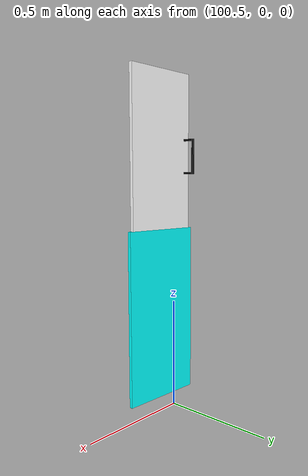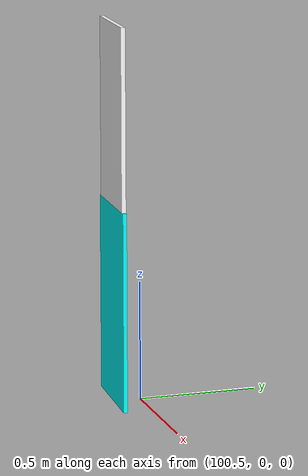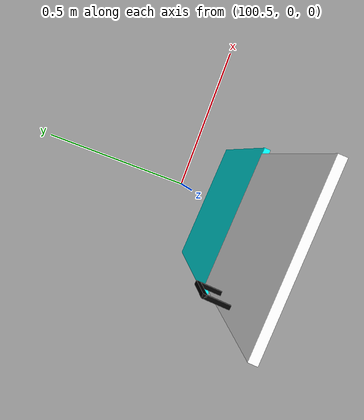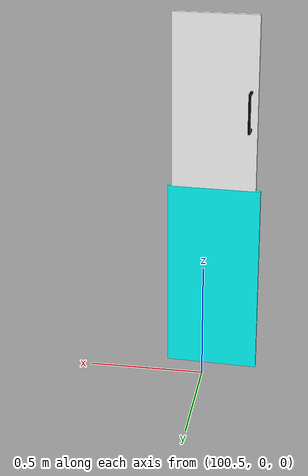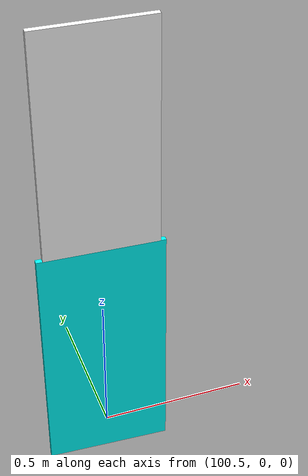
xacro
<?xml version="1.0" ?>
<robot name="shelf" xmlns:xacro="http://www.ros.org/wiki/xacro">
    <xacro:arg name="fixed" default="true"/>
    <xacro:arg name="prefix" default=""/>

    <xacro:property name="prefix" default="$(arg prefix)"/>
    <xacro:property name="door_length" default="0.363"/>
    <xacro:property name="door_height" default="0.748"/>
    <xacro:property name="door_width" default="0.018"/>
    <xacro:property name="corpus_door_gap" default="0.004"/>
    <xacro:property name="corpus_length" default="0.4"/>
    <xacro:property name="corpus_height" default="0.827"/>
    <xacro:property name="corpus_width" default="0.016"/>
    <xacro:property name="handle_height" default="0.056"/>
    <xacro:property name="handle_length" default="0.16"/>
    <xacro:property name="handle_offset_y" default="0.335"/>
    <xacro:property name="handle_offset_z" default="-0.024"/>

    <xacro:property name="shelf_x" default="0.268466"/>
    <xacro:property name="shelf_y" default="-0.407"/>
    <xacro:property name="shelf_z" default="0.8299"/>

    <xacro:macro name="box_inertia" params="m x y z">
        <inertial>
            <origin rpy="0 0 0" xyz="0 ${-y/2} 0"/>
            <mass value="${m}"/>
            <inertia ixx="${0.0833 * m * (y**2 + z**2)}"
                     ixy="0"
                     ixz="0"
                     iyy="${0.0833 * m * (x**2 + z**2)}"
                     iyz="0"
                     izz="${0.0833 * m * (x**2 + y**2)}"/>
        </inertial>
    </xacro:macro>

    <xacro:if value="$(arg fixed)">
        <link name="world"/>
        <joint name="fixed" type="fixed">
            <parent link="world"/>
            <child link="${prefix}shelf"/>
            <origin xyz="100.272902 -0.0944762   0.830376" rpy="0.000710616 0.000859919  1.51977"/>
        </joint>
    </xacro:if>

    <link name="${prefix}shelf">
        <xacro:box_inertia m="5" x="${corpus_width}" y="${corpus_length}" z="${shelf_z}"/>
        <visual>
            <origin rpy="0 0 0" xyz="0 -${corpus_length/2} ${-shelf_z/2}"/>
            <geometry>
                <box size="${corpus_width} ${corpus_length} ${shelf_z}"/>
            </geometry>
            <material name="shelf_material">
                <color rgba="0.0 1.0 1.0 1"/>
            </material>
        </visual>
    </link>

    <link name="${prefix}door">
        <xacro:box_inertia m="3.0" x="${door_width}" y="${door_length}" z="${door_height}"/>
        <visual>
            <origin rpy="0 0 0" xyz="${-door_width/2} ${door_length/2} 0"/>
            <geometry>
                <box size="${door_width} ${door_length} ${door_height}"/>
            </geometry>
            <material name="door_material">
                <color rgba="1.0 1.0 1.0 1"/>
            </material>
        </visual>
        <collision>
            <origin rpy="0 0 0" xyz="0 ${door_length/2} 0"/>
            <geometry>
                <box size="${door_width} ${door_length} ${door_height}"/>
            </geometry>
            <material name="">
                <contact name="rubber"/>
            </material>
        </collision>
    </link>

    <link name="${prefix}door_hinge">
        <inertial>
            <mass value="0.01"/>
            <origin rpy="0 0 0" xyz="0.0 0 0"/>
            <inertia ixx="0.0" ixy="0.0" ixz="0.0" iyy="0.0" iyz="0.0" izz="0.0"/>
        </inertial>
    </link>

    <joint name="${prefix}door_hinge_joint" type="fixed">
        <parent link="${prefix}shelf"/>
        <child link="${prefix}door_hinge"/>
        <origin xyz="${door_width/2} -${door_length + corpus_width +corpus_door_gap} ${door_height/2}"/>
    </joint>

    <link name="${prefix}axis_link">
        <inertial>
            <mass value="0.01"/>
            <origin rpy="0 0 0" xyz="0 0 0"/>
            <inertia ixx="0.0" ixy="0.0" ixz="0.0" iyy="0.0" iyz="0.0" izz="0.0"/>
        </inertial>
    </link>

    <joint name="${prefix}axis_joint" type="fixed">
        <parent link="${prefix}door_hinge"/>
        <child link="${prefix}axis_link"/>
        <origin xyz="0.0 0.0 0.0"/>
    </joint>

    <joint name="articulation_joint" type="revolute">
        <parent link="${prefix}axis_link"/>
        <child link="${prefix}measured_joint_link"/>
        <origin xyz="0 0 0"/>
        <dynamics damping="2.0" friction="4.0"/>
        <axis xyz="0 0 -1"/>
        <limit effort="100" lower="0" upper="1.75" velocity="10.0"/>
    </joint>

    <joint name="${prefix}door_link" type="fixed">
        <parent link="${prefix}measured_joint_link"/>
        <child link="${prefix}door"/>
        <origin xyz="0.0 0.0 0.0"/>
    </joint>

    <link name="${prefix}handle_link">
        <inertial>
            <origin rpy="0 0 0" xyz="0 0 0"/>
            <mass value="0.1"/>
            <inertia ixx="0.001" ixy="0" ixz="0" iyy="0.001" iyz="0" izz="0.001"/>
        </inertial>
        <visual>
            <origin rpy="0 0 0" xyz="0 0 0"/>
            <geometry>
                <box size="0.01 0.01 ${handle_length+0.01}"/>
            </geometry>
            <material name="handle_material">
                <color rgba="0.0 0.0 0.0 1"/>
            </material>
        </visual>
        <collision>
            <origin rpy="0 0 0" xyz="0 0 0"/>
            <geometry>
                <box size="0.01 0.01 ${handle_length+0.01}"/>
            </geometry>
            <material name="">
                <contact name="steel"/>
            </material>
        </collision>
    </link>

    <link name="${prefix}handle_support_left">
        <inertial>
            <origin rpy="0 0 0" xyz="0 0 0"/>
            <mass value="0.1"/>
            <inertia ixx="0.001" ixy="0" ixz="0" iyy="0.001" iyz="0" izz="0.001"/>
        </inertial>
        <visual>
            <origin rpy="0 0 0" xyz="0 0 0"/>
            <geometry>
                <box size="${handle_height} 0.01 0.01"/>
            </geometry>
            <material name="handle_material">
                <color rgba="0.0 0.0 0.0 1"/>
            </material>
        </visual>
        <collision>
            <origin rpy="0 0 0" xyz="0 0 0"/>
            <geometry>
                <box size="${handle_height} 0.01 0.01"/>
            </geometry>
            <material name="">
                <contact name="rubber"/>
            </material>
        </collision>
    </link>

    <link name="${prefix}handle_support_right">
        <inertial>
            <origin rpy="0 0 0" xyz="0 0 0"/>
            <mass value="0.1"/>
            <inertia ixx="0.001" ixy="0" ixz="0" iyy="0.001" iyz="0" izz="0.001"/>
        </inertial>
        <visual>
            <origin rpy="0 0 0" xyz="0 0 0"/>
            <geometry>
                <box size="${handle_height} 0.01 0.01"/>
            </geometry>
            <material name="handle_material">
                <color rgba="0.0 0.0 0.0 1"/>
            </material>
        </visual>
        <collision>
            <origin rpy="0 0 0" xyz="0 0 0"/>
            <geometry>
                <box size="${handle_height} 0.01 0.01"/>
            </geometry>
            <material name="">
                <contact name="rubber"/>
            </material>
        </collision>
    </link>

    <joint name="${prefix}handle_joint" type="fixed">
        <parent link="${prefix}door"/>
        <child link="${prefix}handle_link"/>
        <origin xyz="${handle_height} ${handle_offset_y} ${handle_offset_z}"
                rpy="0 0 0"/> <!-- height handle + half the width door, 0.30 minus some offset -->
    </joint>

    <joint name="${prefix}handle_support_left_joint" type="fixed">
        <parent link="${prefix}handle_link"/>
        <child link="${prefix}handle_support_left"/>
        <origin xyz="-${handle_height/2} 0 -${handle_length/2}" rpy="0 0 0"/>
    </joint>

    <joint name="${prefix}handle_support_right_joint" type="fixed">
        <parent link="${prefix}handle_link"/>
        <child link="${prefix}handle_support_right"/>
        <origin xyz="-${handle_height/2} 0 ${handle_length/2}" rpy="0 0 0"/>
    </joint>

    <link name="${prefix}measured_joint_link">
        <inertial>
            <mass value="0.01"/>
            <origin rpy="0 0 0" xyz="0 0 0"/>
            <inertia ixx="0.0" ixy="0.0" ixz="0.0" iyy="0.0" iyz="0.0" izz="0.0"/>
        </inertial>
    </link>
</robot>
